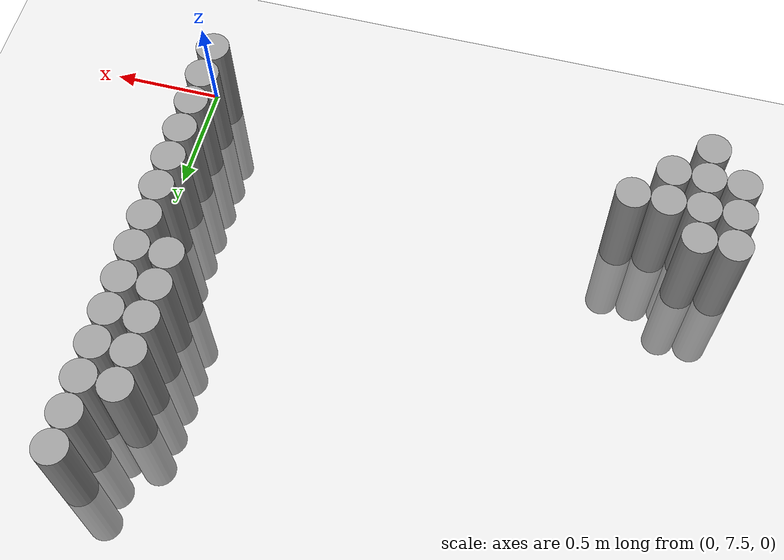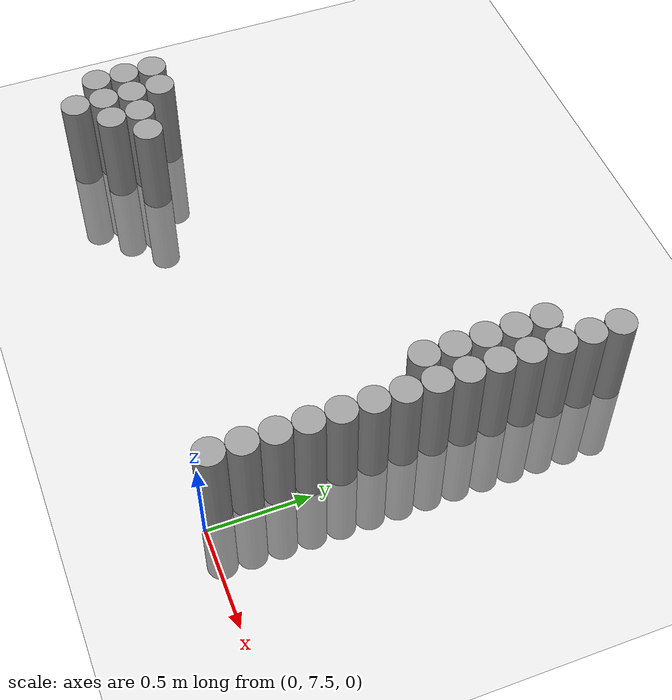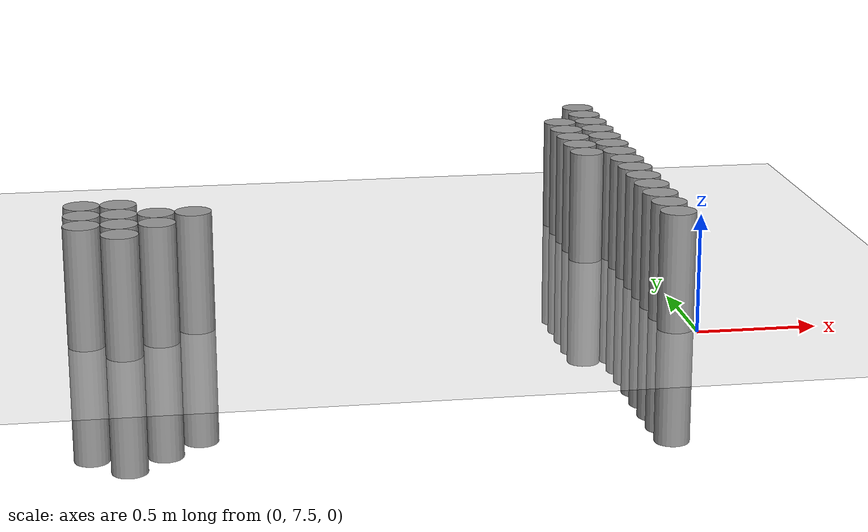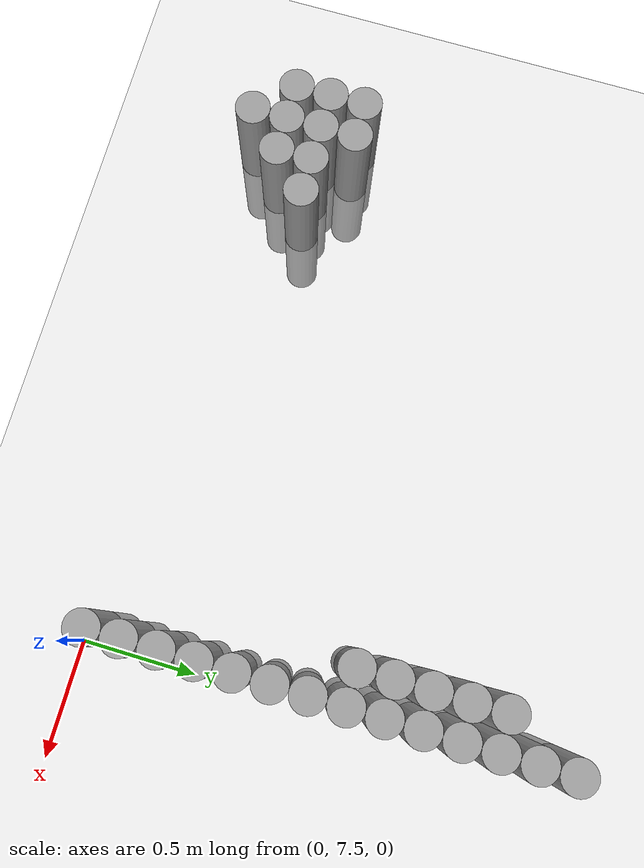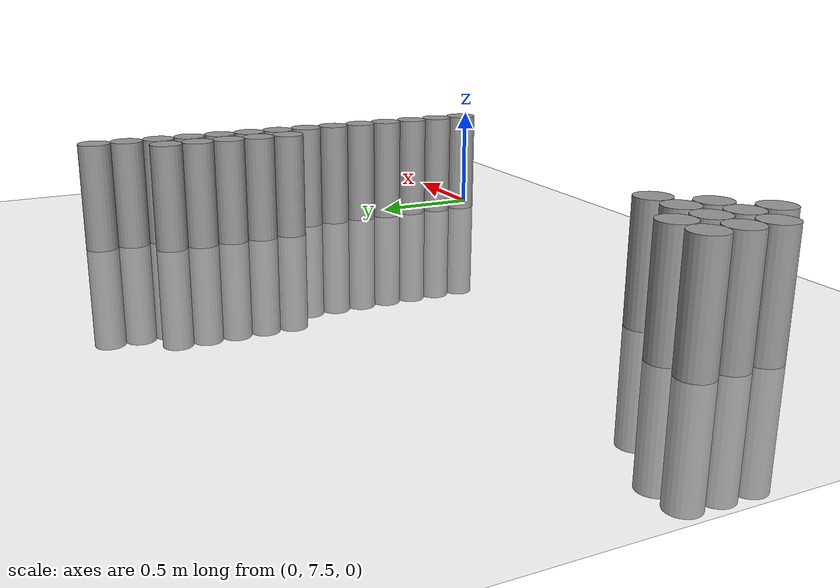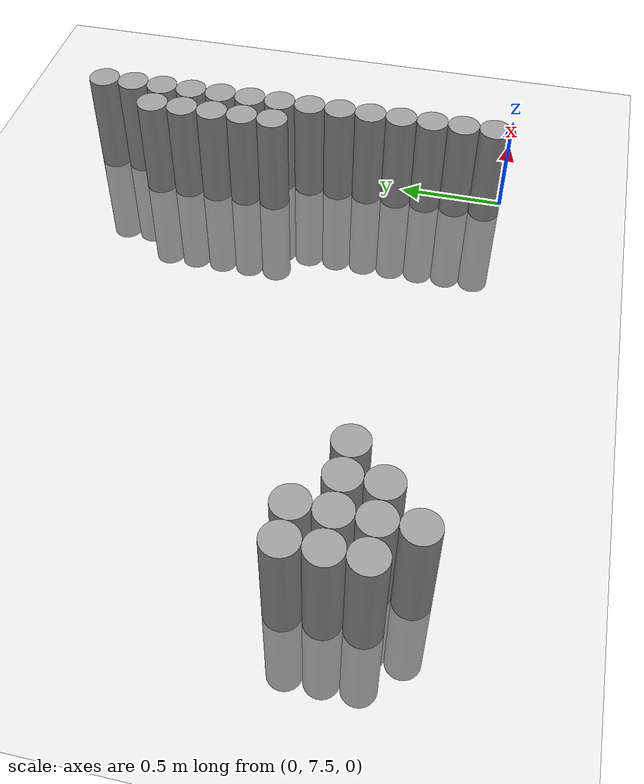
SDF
<sdf version="1.6">
 <world name="default">
  <model name="ground_plane">
   <static>1</static>
   <static>1</static>
   <link name="link">
    <collision name="collision">
     <geometry><plane><normal>0 0 1</normal><size>100 100</size></plane></geometry>
     <surface><friction><ode><mu>100</mu><mu2>50</mu2></ode></friction></surface>
    </collision>
    <visual name="visual">
     <cast_shadows>0</cast_shadows>
     <geometry><plane><normal>0 0 1</normal><size>100 100</size></plane></geometry>
     <material>
      <script><uri>file://media/materials/scripts/gazebo.material</uri><name>Gazebo/Grey</name></script>
     </material>
    </visual>
   </link>
  </model>
  <model name="unit_cylinder_172">
   <static>1</static>
   <pose>-2.475000 7.725000 0.000000 0.000000 0.000000 0.000000</pose>
   <link name="link">
    <inertial>
     <mass>1</mass>
     <inertia><ixx>0.145833</ixx><ixy>0</ixy><ixz>0</ixz><iyy>0.145833</iyy><iyz>0</iyz><izz>0.125</izz></inertia>
    </inertial>
    <collision name="collision">
     <geometry><cylinder><radius>0.075000</radius><length>1</length></cylinder></geometry>
    </collision>
    <visual name="visual">
     <geometry><cylinder><radius>0.075000</radius><length>1</length></cylinder></geometry>
     <material>
      <script><name>Gazebo/Grey</name><uri>file://media/materials/scripts/gazebo.material</uri></script>
     </material>
    </visual>
   </link>
  </model>
  <model name="unit_cylinder_173">
   <static>1</static>
   <pose>-2.475000 7.875000 0.000000 0.000000 0.000000 0.000000</pose>
   <link name="link">
    <inertial>
     <mass>1</mass>
     <inertia><ixx>0.145833</ixx><ixy>0</ixy><ixz>0</ixz><iyy>0.145833</iyy><iyz>0</iyz><izz>0.125</izz></inertia>
    </inertial>
    <collision name="collision">
     <geometry><cylinder><radius>0.075000</radius><length>1</length></cylinder></geometry>
    </collision>
    <visual name="visual">
     <geometry><cylinder><radius>0.075000</radius><length>1</length></cylinder></geometry>
     <material>
      <script><name>Gazebo/Grey</name><uri>file://media/materials/scripts/gazebo.material</uri></script>
     </material>
    </visual>
   </link>
  </model>
  <model name="unit_cylinder_174">
   <static>1</static>
   <pose>-2.475000 8.025000 0.000000 0.000000 0.000000 0.000000</pose>
   <link name="link">
    <inertial>
     <mass>1</mass>
     <inertia><ixx>0.145833</ixx><ixy>0</ixy><ixz>0</ixz><iyy>0.145833</iyy><iyz>0</iyz><izz>0.125</izz></inertia>
    </inertial>
    <collision name="collision">
     <geometry><cylinder><radius>0.075000</radius><length>1</length></cylinder></geometry>
    </collision>
    <visual name="visual">
     <geometry><cylinder><radius>0.075000</radius><length>1</length></cylinder></geometry>
     <material>
      <script><name>Gazebo/Grey</name><uri>file://media/materials/scripts/gazebo.material</uri></script>
     </material>
    </visual>
   </link>
  </model>
  <model name="unit_cylinder_177">
   <static>1</static>
   <pose>-2.325000 7.575000 0.000000 0.000000 0.000000 0.000000</pose>
   <link name="link">
    <inertial>
     <mass>1</mass>
     <inertia><ixx>0.145833</ixx><ixy>0</ixy><ixz>0</ixz><iyy>0.145833</iyy><iyz>0</iyz><izz>0.125</izz></inertia>
    </inertial>
    <collision name="collision">
     <geometry><cylinder><radius>0.075000</radius><length>1</length></cylinder></geometry>
    </collision>
    <visual name="visual">
     <geometry><cylinder><radius>0.075000</radius><length>1</length></cylinder></geometry>
     <material>
      <script><name>Gazebo/Grey</name><uri>file://media/materials/scripts/gazebo.material</uri></script>
     </material>
    </visual>
   </link>
  </model>
  <model name="unit_cylinder_178">
   <static>1</static>
   <pose>-2.325000 7.725000 0.000000 0.000000 0.000000 0.000000</pose>
   <link name="link">
    <inertial>
     <mass>1</mass>
     <inertia><ixx>0.145833</ixx><ixy>0</ixy><ixz>0</ixz><iyy>0.145833</iyy><iyz>0</iyz><izz>0.125</izz></inertia>
    </inertial>
    <collision name="collision">
     <geometry><cylinder><radius>0.075000</radius><length>1</length></cylinder></geometry>
    </collision>
    <visual name="visual">
     <geometry><cylinder><radius>0.075000</radius><length>1</length></cylinder></geometry>
     <material>
      <script><name>Gazebo/Grey</name><uri>file://media/materials/scripts/gazebo.material</uri></script>
     </material>
    </visual>
   </link>
  </model>
  <model name="unit_cylinder_179">
   <static>1</static>
   <pose>-2.325000 7.875000 0.000000 0.000000 0.000000 0.000000</pose>
   <link name="link">
    <inertial>
     <mass>1</mass>
     <inertia><ixx>0.145833</ixx><ixy>0</ixy><ixz>0</ixz><iyy>0.145833</iyy><iyz>0</iyz><izz>0.125</izz></inertia>
    </inertial>
    <collision name="collision">
     <geometry><cylinder><radius>0.075000</radius><length>1</length></cylinder></geometry>
    </collision>
    <visual name="visual">
     <geometry><cylinder><radius>0.075000</radius><length>1</length></cylinder></geometry>
     <material>
      <script><name>Gazebo/Grey</name><uri>file://media/materials/scripts/gazebo.material</uri></script>
     </material>
    </visual>
   </link>
  </model>
  <model name="unit_cylinder_180">
   <static>1</static>
   <pose>-2.325000 8.025000 0.000000 0.000000 0.000000 0.000000</pose>
   <link name="link">
    <inertial>
     <mass>1</mass>
     <inertia><ixx>0.145833</ixx><ixy>0</ixy><ixz>0</ixz><iyy>0.145833</iyy><iyz>0</iyz><izz>0.125</izz></inertia>
    </inertial>
    <collision name="collision">
     <geometry><cylinder><radius>0.075000</radius><length>1</length></cylinder></geometry>
    </collision>
    <visual name="visual">
     <geometry><cylinder><radius>0.075000</radius><length>1</length></cylinder></geometry>
     <material>
      <script><name>Gazebo/Grey</name><uri>file://media/materials/scripts/gazebo.material</uri></script>
     </material>
    </visual>
   </link>
  </model>
  <model name="unit_cylinder_181">
   <static>1</static>
   <pose>-2.175000 7.725000 0.000000 0.000000 0.000000 0.000000</pose>
   <link name="link">
    <inertial>
     <mass>1</mass>
     <inertia><ixx>0.145833</ixx><ixy>0</ixy><ixz>0</ixz><iyy>0.145833</iyy><iyz>0</iyz><izz>0.125</izz></inertia>
    </inertial>
    <collision name="collision">
     <geometry><cylinder><radius>0.075000</radius><length>1</length></cylinder></geometry>
    </collision>
    <visual name="visual">
     <geometry><cylinder><radius>0.075000</radius><length>1</length></cylinder></geometry>
     <material>
      <script><name>Gazebo/Grey</name><uri>file://media/materials/scripts/gazebo.material</uri></script>
     </material>
    </visual>
   </link>
  </model>
  <model name="unit_cylinder_182">
   <static>1</static>
   <pose>-2.175000 7.875000 0.000000 0.000000 0.000000 0.000000</pose>
   <link name="link">
    <inertial>
     <mass>1</mass>
     <inertia><ixx>0.145833</ixx><ixy>0</ixy><ixz>0</ixz><iyy>0.145833</iyy><iyz>0</iyz><izz>0.125</izz></inertia>
    </inertial>
    <collision name="collision">
     <geometry><cylinder><radius>0.075000</radius><length>1</length></cylinder></geometry>
    </collision>
    <visual name="visual">
     <geometry><cylinder><radius>0.075000</radius><length>1</length></cylinder></geometry>
     <material>
      <script><name>Gazebo/Grey</name><uri>file://media/materials/scripts/gazebo.material</uri></script>
     </material>
    </visual>
   </link>
  </model>
  <model name="unit_cylinder_183">
   <static>1</static>
   <pose>-2.025000 7.875000 0.000000 0.000000 0.000000 0.000000</pose>
   <link name="link">
    <inertial>
     <mass>1</mass>
     <inertia><ixx>0.145833</ixx><ixy>0</ixy><ixz>0</ixz><iyy>0.145833</iyy><iyz>0</iyz><izz>0.125</izz></inertia>
    </inertial>
    <collision name="collision">
     <geometry><cylinder><radius>0.075000</radius><length>1</length></cylinder></geometry>
    </collision>
    <visual name="visual">
     <geometry><cylinder><radius>0.075000</radius><length>1</length></cylinder></geometry>
     <material>
      <script><name>Gazebo/Grey</name><uri>file://media/materials/scripts/gazebo.material</uri></script>
     </material>
    </visual>
   </link>
  </model>
  <model name="unit_cylinder_190">
   <static>1</static>
   <pose>-0.225000 8.625000 0.000000 0.000000 0.000000 0.000000</pose>
   <link name="link">
    <inertial>
     <mass>1</mass>
     <inertia><ixx>0.145833</ixx><ixy>0</ixy><ixz>0</ixz><iyy>0.145833</iyy><iyz>0</iyz><izz>0.125</izz></inertia>
    </inertial>
    <collision name="collision">
     <geometry><cylinder><radius>0.075000</radius><length>1</length></cylinder></geometry>
    </collision>
    <visual name="visual">
     <geometry><cylinder><radius>0.075000</radius><length>1</length></cylinder></geometry>
     <material>
      <script><name>Gazebo/Grey</name><uri>file://media/materials/scripts/gazebo.material</uri></script>
     </material>
    </visual>
   </link>
  </model>
  <model name="unit_cylinder_191">
   <static>1</static>
   <pose>-0.225000 8.775000 0.000000 0.000000 0.000000 0.000000</pose>
   <link name="link">
    <inertial>
     <mass>1</mass>
     <inertia><ixx>0.145833</ixx><ixy>0</ixy><ixz>0</ixz><iyy>0.145833</iyy><iyz>0</iyz><izz>0.125</izz></inertia>
    </inertial>
    <collision name="collision">
     <geometry><cylinder><radius>0.075000</radius><length>1</length></cylinder></geometry>
    </collision>
    <visual name="visual">
     <geometry><cylinder><radius>0.075000</radius><length>1</length></cylinder></geometry>
     <material>
      <script><name>Gazebo/Grey</name><uri>file://media/materials/scripts/gazebo.material</uri></script>
     </material>
    </visual>
   </link>
  </model>
  <model name="unit_cylinder_192">
   <static>1</static>
   <pose>-0.225000 8.925000 0.000000 0.000000 0.000000 0.000000</pose>
   <link name="link">
    <inertial>
     <mass>1</mass>
     <inertia><ixx>0.145833</ixx><ixy>0</ixy><ixz>0</ixz><iyy>0.145833</iyy><iyz>0</iyz><izz>0.125</izz></inertia>
    </inertial>
    <collision name="collision">
     <geometry><cylinder><radius>0.075000</radius><length>1</length></cylinder></geometry>
    </collision>
    <visual name="visual">
     <geometry><cylinder><radius>0.075000</radius><length>1</length></cylinder></geometry>
     <material>
      <script><name>Gazebo/Grey</name><uri>file://media/materials/scripts/gazebo.material</uri></script>
     </material>
    </visual>
   </link>
  </model>
  <model name="unit_cylinder_193">
   <static>1</static>
   <pose>-0.225000 9.075000 0.000000 0.000000 0.000000 0.000000</pose>
   <link name="link">
    <inertial>
     <mass>1</mass>
     <inertia><ixx>0.145833</ixx><ixy>0</ixy><ixz>0</ixz><iyy>0.145833</iyy><iyz>0</iyz><izz>0.125</izz></inertia>
    </inertial>
    <collision name="collision">
     <geometry><cylinder><radius>0.075000</radius><length>1</length></cylinder></geometry>
    </collision>
    <visual name="visual">
     <geometry><cylinder><radius>0.075000</radius><length>1</length></cylinder></geometry>
     <material>
      <script><name>Gazebo/Grey</name><uri>file://media/materials/scripts/gazebo.material</uri></script>
     </material>
    </visual>
   </link>
  </model>
  <model name="unit_cylinder_194">
   <static>1</static>
   <pose>-0.225000 9.225000 0.000000 0.000000 0.000000 0.000000</pose>
   <link name="link">
    <inertial>
     <mass>1</mass>
     <inertia><ixx>0.145833</ixx><ixy>0</ixy><ixz>0</ixz><iyy>0.145833</iyy><iyz>0</iyz><izz>0.125</izz></inertia>
    </inertial>
    <collision name="collision">
     <geometry><cylinder><radius>0.075000</radius><length>1</length></cylinder></geometry>
    </collision>
    <visual name="visual">
     <geometry><cylinder><radius>0.075000</radius><length>1</length></cylinder></geometry>
     <material>
      <script><name>Gazebo/Grey</name><uri>file://media/materials/scripts/gazebo.material</uri></script>
     </material>
    </visual>
   </link>
  </model>
  <model name="unit_cylinder_211">
   <static>1</static>
   <pose>-0.075000 7.575000 0.000000 0.000000 0.000000 0.000000</pose>
   <link name="link">
    <inertial>
     <mass>1</mass>
     <inertia><ixx>0.145833</ixx><ixy>0</ixy><ixz>0</ixz><iyy>0.145833</iyy><iyz>0</iyz><izz>0.125</izz></inertia>
    </inertial>
    <collision name="collision">
     <geometry><cylinder><radius>0.075000</radius><length>1</length></cylinder></geometry>
    </collision>
    <visual name="visual">
     <geometry><cylinder><radius>0.075000</radius><length>1</length></cylinder></geometry>
     <material>
      <script><name>Gazebo/Grey</name><uri>file://media/materials/scripts/gazebo.material</uri></script>
     </material>
    </visual>
   </link>
  </model>
  <model name="unit_cylinder_212">
   <static>1</static>
   <pose>-0.075000 7.725000 0.000000 0.000000 0.000000 0.000000</pose>
   <link name="link">
    <inertial>
     <mass>1</mass>
     <inertia><ixx>0.145833</ixx><ixy>0</ixy><ixz>0</ixz><iyy>0.145833</iyy><iyz>0</iyz><izz>0.125</izz></inertia>
    </inertial>
    <collision name="collision">
     <geometry><cylinder><radius>0.075000</radius><length>1</length></cylinder></geometry>
    </collision>
    <visual name="visual">
     <geometry><cylinder><radius>0.075000</radius><length>1</length></cylinder></geometry>
     <material>
      <script><name>Gazebo/Grey</name><uri>file://media/materials/scripts/gazebo.material</uri></script>
     </material>
    </visual>
   </link>
  </model>
  <model name="unit_cylinder_213">
   <static>1</static>
   <pose>-0.075000 7.875000 0.000000 0.000000 0.000000 0.000000</pose>
   <link name="link">
    <inertial>
     <mass>1</mass>
     <inertia><ixx>0.145833</ixx><ixy>0</ixy><ixz>0</ixz><iyy>0.145833</iyy><iyz>0</iyz><izz>0.125</izz></inertia>
    </inertial>
    <collision name="collision">
     <geometry><cylinder><radius>0.075000</radius><length>1</length></cylinder></geometry>
    </collision>
    <visual name="visual">
     <geometry><cylinder><radius>0.075000</radius><length>1</length></cylinder></geometry>
     <material>
      <script><name>Gazebo/Grey</name><uri>file://media/materials/scripts/gazebo.material</uri></script>
     </material>
    </visual>
   </link>
  </model>
  <model name="unit_cylinder_214">
   <static>1</static>
   <pose>-0.075000 8.025000 0.000000 0.000000 0.000000 0.000000</pose>
   <link name="link">
    <inertial>
     <mass>1</mass>
     <inertia><ixx>0.145833</ixx><ixy>0</ixy><ixz>0</ixz><iyy>0.145833</iyy><iyz>0</iyz><izz>0.125</izz></inertia>
    </inertial>
    <collision name="collision">
     <geometry><cylinder><radius>0.075000</radius><length>1</length></cylinder></geometry>
    </collision>
    <visual name="visual">
     <geometry><cylinder><radius>0.075000</radius><length>1</length></cylinder></geometry>
     <material>
      <script><name>Gazebo/Grey</name><uri>file://media/materials/scripts/gazebo.material</uri></script>
     </material>
    </visual>
   </link>
  </model>
  <model name="unit_cylinder_215">
   <static>1</static>
   <pose>-0.075000 8.175000 0.000000 0.000000 0.000000 0.000000</pose>
   <link name="link">
    <inertial>
     <mass>1</mass>
     <inertia><ixx>0.145833</ixx><ixy>0</ixy><ixz>0</ixz><iyy>0.145833</iyy><iyz>0</iyz><izz>0.125</izz></inertia>
    </inertial>
    <collision name="collision">
     <geometry><cylinder><radius>0.075000</radius><length>1</length></cylinder></geometry>
    </collision>
    <visual name="visual">
     <geometry><cylinder><radius>0.075000</radius><length>1</length></cylinder></geometry>
     <material>
      <script><name>Gazebo/Grey</name><uri>file://media/materials/scripts/gazebo.material</uri></script>
     </material>
    </visual>
   </link>
  </model>
  <model name="unit_cylinder_216">
   <static>1</static>
   <pose>-0.075000 8.325000 0.000000 0.000000 0.000000 0.000000</pose>
   <link name="link">
    <inertial>
     <mass>1</mass>
     <inertia><ixx>0.145833</ixx><ixy>0</ixy><ixz>0</ixz><iyy>0.145833</iyy><iyz>0</iyz><izz>0.125</izz></inertia>
    </inertial>
    <collision name="collision">
     <geometry><cylinder><radius>0.075000</radius><length>1</length></cylinder></geometry>
    </collision>
    <visual name="visual">
     <geometry><cylinder><radius>0.075000</radius><length>1</length></cylinder></geometry>
     <material>
      <script><name>Gazebo/Grey</name><uri>file://media/materials/scripts/gazebo.material</uri></script>
     </material>
    </visual>
   </link>
  </model>
  <model name="unit_cylinder_217">
   <static>1</static>
   <pose>-0.075000 8.475000 0.000000 0.000000 0.000000 0.000000</pose>
   <link name="link">
    <inertial>
     <mass>1</mass>
     <inertia><ixx>0.145833</ixx><ixy>0</ixy><ixz>0</ixz><iyy>0.145833</iyy><iyz>0</iyz><izz>0.125</izz></inertia>
    </inertial>
    <collision name="collision">
     <geometry><cylinder><radius>0.075000</radius><length>1</length></cylinder></geometry>
    </collision>
    <visual name="visual">
     <geometry><cylinder><radius>0.075000</radius><length>1</length></cylinder></geometry>
     <material>
      <script><name>Gazebo/Grey</name><uri>file://media/materials/scripts/gazebo.material</uri></script>
     </material>
    </visual>
   </link>
  </model>
  <model name="unit_cylinder_218">
   <static>1</static>
   <pose>-0.075000 8.625000 0.000000 0.000000 0.000000 0.000000</pose>
   <link name="link">
    <inertial>
     <mass>1</mass>
     <inertia><ixx>0.145833</ixx><ixy>0</ixy><ixz>0</ixz><iyy>0.145833</iyy><iyz>0</iyz><izz>0.125</izz></inertia>
    </inertial>
    <collision name="collision">
     <geometry><cylinder><radius>0.075000</radius><length>1</length></cylinder></geometry>
    </collision>
    <visual name="visual">
     <geometry><cylinder><radius>0.075000</radius><length>1</length></cylinder></geometry>
     <material>
      <script><name>Gazebo/Grey</name><uri>file://media/materials/scripts/gazebo.material</uri></script>
     </material>
    </visual>
   </link>
  </model>
  <model name="unit_cylinder_219">
   <static>1</static>
   <pose>-0.075000 8.775000 0.000000 0.000000 0.000000 0.000000</pose>
   <link name="link">
    <inertial>
     <mass>1</mass>
     <inertia><ixx>0.145833</ixx><ixy>0</ixy><ixz>0</ixz><iyy>0.145833</iyy><iyz>0</iyz><izz>0.125</izz></inertia>
    </inertial>
    <collision name="collision">
     <geometry><cylinder><radius>0.075000</radius><length>1</length></cylinder></geometry>
    </collision>
    <visual name="visual">
     <geometry><cylinder><radius>0.075000</radius><length>1</length></cylinder></geometry>
     <material>
      <script><name>Gazebo/Grey</name><uri>file://media/materials/scripts/gazebo.material</uri></script>
     </material>
    </visual>
   </link>
  </model>
  <model name="unit_cylinder_220">
   <static>1</static>
   <pose>-0.075000 8.925000 0.000000 0.000000 0.000000 0.000000</pose>
   <link name="link">
    <inertial>
     <mass>1</mass>
     <inertia><ixx>0.145833</ixx><ixy>0</ixy><ixz>0</ixz><iyy>0.145833</iyy><iyz>0</iyz><izz>0.125</izz></inertia>
    </inertial>
    <collision name="collision">
     <geometry><cylinder><radius>0.075000</radius><length>1</length></cylinder></geometry>
    </collision>
    <visual name="visual">
     <geometry><cylinder><radius>0.075000</radius><length>1</length></cylinder></geometry>
     <material>
      <script><name>Gazebo/Grey</name><uri>file://media/materials/scripts/gazebo.material</uri></script>
     </material>
    </visual>
   </link>
  </model>
  <model name="unit_cylinder_221">
   <static>1</static>
   <pose>-0.075000 9.075000 0.000000 0.000000 0.000000 0.000000</pose>
   <link name="link">
    <inertial>
     <mass>1</mass>
     <inertia><ixx>0.145833</ixx><ixy>0</ixy><ixz>0</ixz><iyy>0.145833</iyy><iyz>0</iyz><izz>0.125</izz></inertia>
    </inertial>
    <collision name="collision">
     <geometry><cylinder><radius>0.075000</radius><length>1</length></cylinder></geometry>
    </collision>
    <visual name="visual">
     <geometry><cylinder><radius>0.075000</radius><length>1</length></cylinder></geometry>
     <material>
      <script><name>Gazebo/Grey</name><uri>file://media/materials/scripts/gazebo.material</uri></script>
     </material>
    </visual>
   </link>
  </model>
  <model name="unit_cylinder_222">
   <static>1</static>
   <pose>-0.075000 9.225000 0.000000 0.000000 0.000000 0.000000</pose>
   <link name="link">
    <inertial>
     <mass>1</mass>
     <inertia><ixx>0.145833</ixx><ixy>0</ixy><ixz>0</ixz><iyy>0.145833</iyy><iyz>0</iyz><izz>0.125</izz></inertia>
    </inertial>
    <collision name="collision">
     <geometry><cylinder><radius>0.075000</radius><length>1</length></cylinder></geometry>
    </collision>
    <visual name="visual">
     <geometry><cylinder><radius>0.075000</radius><length>1</length></cylinder></geometry>
     <material>
      <script><name>Gazebo/Grey</name><uri>file://media/materials/scripts/gazebo.material</uri></script>
     </material>
    </visual>
   </link>
  </model>
  <model name="unit_cylinder_223">
   <static>1</static>
   <pose>-0.075000 9.375000 0.000000 0.000000 0.000000 0.000000</pose>
   <link name="link">
    <inertial>
     <mass>1</mass>
     <inertia><ixx>0.145833</ixx><ixy>0</ixy><ixz>0</ixz><iyy>0.145833</iyy><iyz>0</iyz><izz>0.125</izz></inertia>
    </inertial>
    <collision name="collision">
     <geometry><cylinder><radius>0.075000</radius><length>1</length></cylinder></geometry>
    </collision>
    <visual name="visual">
     <geometry><cylinder><radius>0.075000</radius><length>1</length></cylinder></geometry>
     <material>
      <script><name>Gazebo/Grey</name><uri>file://media/materials/scripts/gazebo.material</uri></script>
     </material>
    </visual>
   </link>
  </model>
  <model name="unit_cylinder_224">
   <static>1</static>
   <pose>-0.075000 9.525000 0.000000 0.000000 0.000000 0.000000</pose>
   <link name="link">
    <inertial>
     <mass>1</mass>
     <inertia><ixx>0.145833</ixx><ixy>0</ixy><ixz>0</ixz><iyy>0.145833</iyy><iyz>0</iyz><izz>0.125</izz></inertia>
    </inertial>
    <collision name="collision">
     <geometry><cylinder><radius>0.075000</radius><length>1</length></cylinder></geometry>
    </collision>
    <visual name="visual">
     <geometry><cylinder><radius>0.075000</radius><length>1</length></cylinder></geometry>
     <material>
      <script><name>Gazebo/Grey</name><uri>file://media/materials/scripts/gazebo.material</uri></script>
     </material>
    </visual>
   </link>
  </model>
 </world>
</sdf>
